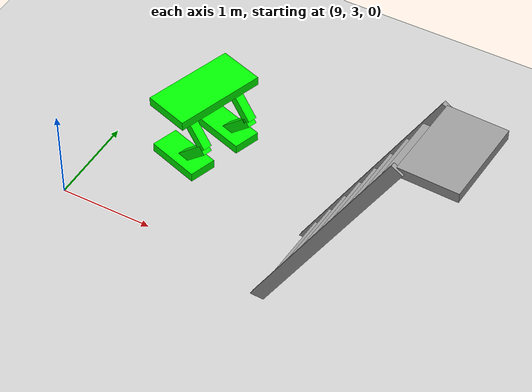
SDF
<sdf version="1.7">
 <world name="default">
  <model name="ground_plane">
   <static>1</static>
   <link name="link">
    <collision name="collision">
     <geometry><plane><normal>0 0 1</normal><size>100 100</size></plane></geometry>
     <surface>
      <contact><collide_bitmask>65535</collide_bitmask></contact>
      <friction><ode><mu>100</mu><mu2>50</mu2></ode></friction>
     </surface>
    </collision>
    <visual name="visual">
     <cast_shadows>0</cast_shadows>
     <geometry><plane><normal>0 0 1</normal><size>100 100</size></plane></geometry>
     <material>
      <script><uri>file://media/materials/scripts/gazebo.material</uri><name>Gazebo/Grey</name></script>
     </material>
    </visual>
   </link>
  </model>
  <model name="ladder_60deg_0rails">
   <static>1</static>
   <link name="step0">
    <pose>0 0.15396 0.266667 0 -0 0</pose>
    <inertial>
     <mass>9.75482</mass>
     <inertia>
      <ixx>0.00957124</ixx>
      <iyy>0.65963</iyy>
      <izz>0.666842</izz>
      <ixy>0</ixy>
      <ixz>0</ixz>
      <iyz>0</iyz>
     </inertia>
    </inertial>
    <collision name="collision"><geometry><box><size>0.9 0.1016 0.0381</size></box></geometry></collision>
    <visual name="visual">
     <geometry><box><size>0.9 0.1016 0.0381</size></box></geometry>
     <material>
      <script><uri>file://media/materials/scripts/gazebo.material</uri><name>Gazebo/Grey</name></script>
     </material>
    </visual>
   </link>
   <link name="step1">
    <pose>0 0.30792 0.533333 0 -0 0</pose>
    <inertial>
     <mass>9.75482</mass>
     <inertia>
      <ixx>0.00957124</ixx>
      <iyy>0.65963</iyy>
      <izz>0.666842</izz>
      <ixy>0</ixy>
      <ixz>0</ixz>
      <iyz>0</iyz>
     </inertia>
    </inertial>
    <collision name="collision"><geometry><box><size>0.9 0.1016 0.0381</size></box></geometry></collision>
    <visual name="visual">
     <geometry><box><size>0.9 0.1016 0.0381</size></box></geometry>
     <material>
      <script><uri>file://media/materials/scripts/gazebo.material</uri><name>Gazebo/Grey</name></script>
     </material>
    </visual>
   </link>
   <link name="step2">
    <pose>0 0.46188 0.8 0 -0 0</pose>
    <inertial>
     <mass>9.75482</mass>
     <inertia>
      <ixx>0.00957124</ixx>
      <iyy>0.65963</iyy>
      <izz>0.666842</izz>
      <ixy>0</ixy>
      <ixz>0</ixz>
      <iyz>0</iyz>
     </inertia>
    </inertial>
    <collision name="collision"><geometry><box><size>0.9 0.1016 0.0381</size></box></geometry></collision>
    <visual name="visual">
     <geometry><box><size>0.9 0.1016 0.0381</size></box></geometry>
     <material>
      <script><uri>file://media/materials/scripts/gazebo.material</uri><name>Gazebo/Grey</name></script>
     </material>
    </visual>
   </link>
   <link name="step3">
    <pose>0 0.61584 1.06667 0 -0 0</pose>
    <inertial>
     <mass>9.75482</mass>
     <inertia>
      <ixx>0.00957124</ixx>
      <iyy>0.65963</iyy>
      <izz>0.666842</izz>
      <ixy>0</ixy>
      <ixz>0</ixz>
      <iyz>0</iyz>
     </inertia>
    </inertial>
    <collision name="collision"><geometry><box><size>0.9 0.1016 0.0381</size></box></geometry></collision>
    <visual name="visual">
     <geometry><box><size>0.9 0.1016 0.0381</size></box></geometry>
     <material>
      <script><uri>file://media/materials/scripts/gazebo.material</uri><name>Gazebo/Grey</name></script>
     </material>
    </visual>
   </link>
   <link name="step4">
    <pose>0 0.7698 1.33333 0 -0 0</pose>
    <inertial>
     <mass>9.75482</mass>
     <inertia>
      <ixx>0.00957124</ixx>
      <iyy>0.65963</iyy>
      <izz>0.666842</izz>
      <ixy>0</ixy>
      <ixz>0</ixz>
      <iyz>0</iyz>
     </inertia>
    </inertial>
    <collision name="collision"><geometry><box><size>0.9 0.1016 0.0381</size></box></geometry></collision>
    <visual name="visual">
     <geometry><box><size>0.9 0.1016 0.0381</size></box></geometry>
     <material>
      <script><uri>file://media/materials/scripts/gazebo.material</uri><name>Gazebo/Grey</name></script>
     </material>
    </visual>
   </link>
   <link name="step5">
    <pose>0 0.92376 1.6 0 -0 0</pose>
    <inertial>
     <mass>9.75482</mass>
     <inertia>
      <ixx>0.00957124</ixx>
      <iyy>0.65963</iyy>
      <izz>0.666842</izz>
      <ixy>0</ixy>
      <ixz>0</ixz>
      <iyz>0</iyz>
     </inertia>
    </inertial>
    <collision name="collision"><geometry><box><size>0.9 0.1016 0.0381</size></box></geometry></collision>
    <visual name="visual">
     <geometry><box><size>0.9 0.1016 0.0381</size></box></geometry>
     <material>
      <script><uri>file://media/materials/scripts/gazebo.material</uri><name>Gazebo/Grey</name></script>
     </material>
    </visual>
   </link>
   <link name="step6">
    <pose>0 1.07772 1.86667 0 -0 0</pose>
    <inertial>
     <mass>9.75482</mass>
     <inertia>
      <ixx>0.00957124</ixx>
      <iyy>0.65963</iyy>
      <izz>0.666842</izz>
      <ixy>0</ixy>
      <ixz>0</ixz>
      <iyz>0</iyz>
     </inertia>
    </inertial>
    <collision name="collision"><geometry><box><size>0.9 0.1016 0.0381</size></box></geometry></collision>
    <visual name="visual">
     <geometry><box><size>0.9 0.1016 0.0381</size></box></geometry>
     <material>
      <script><uri>file://media/materials/scripts/gazebo.material</uri><name>Gazebo/Grey</name></script>
     </material>
    </visual>
   </link>
   <link name="step7">
    <pose>0 1.23168 2.13333 0 -0 0</pose>
    <inertial>
     <mass>9.75482</mass>
     <inertia>
      <ixx>0.00957124</ixx>
      <iyy>0.65963</iyy>
      <izz>0.666842</izz>
      <ixy>0</ixy>
      <ixz>0</ixz>
      <iyz>0</iyz>
     </inertia>
    </inertial>
    <collision name="collision"><geometry><box><size>0.9 0.1016 0.0381</size></box></geometry></collision>
    <visual name="visual">
     <geometry><box><size>0.9 0.1016 0.0381</size></box></geometry>
     <material>
      <script><uri>file://media/materials/scripts/gazebo.material</uri><name>Gazebo/Grey</name></script>
     </material>
    </visual>
   </link>
   <link name="landing">
    <pose>0 1.68564 2.4 0 -0 0</pose>
    <inertial>
     <mass>57.6072</mass>
     <inertia><ixx>1.73518</ixx><iyy>3.89545</iyy><izz>5.6167</izz><ixy>0</ixy><ixz>0</ixz><iyz>0</iyz></inertia>
    </inertial>
    <collision name="collision"><geometry><box><size>0.9 0.6 0.1016</size></box></geometry></collision>
    <visual name="visual">
     <geometry><box><size>0.9 0.6 0.1016</size></box></geometry>
     <material>
      <script><uri>file://media/materials/scripts/gazebo.material</uri><name>Gazebo/Grey</name></script>
     </material>
    </visual>
   </link>
   <link name="left_side_wall">
    <pose>-0.45 0.69282 1.2 1.0472 -0 0</pose>
    <collision name="collision"><geometry><box><size>0.0508 2.85128 0.13</size></box></geometry></collision>
    <visual name="visual">
     <geometry><box><size>0.0508 2.85128 0.13</size></box></geometry>
     <material>
      <script><uri>file://media/materials/scripts/gazebo.material</uri><name>Gazebo/Grey</name></script>
     </material>
    </visual>
   </link>
   <link name="right_side_wall">
    <pose>0.45 0.69282 1.2 1.0472 -0 0</pose>
    <collision name="collision"><geometry><box><size>0.0508 2.85128 0.13</size></box></geometry></collision>
    <visual name="visual">
     <geometry><box><size>0.0508 2.85128 0.13</size></box></geometry>
     <material>
      <script><uri>file://media/materials/scripts/gazebo.material</uri><name>Gazebo/Grey</name></script>
     </material>
    </visual>
   </link>
   <pose>11.4131 3.21267 0 0 0 -1.61132</pose>
  </model>
  <model name="HumanoidRobot_2">
   <model name="HumanoidRobot">
    <link name="link_0">
     <pose>-0.012657 0.075 0.964637 0 -0 0</pose>
     <inertial>
      <mass>1</mass>
      <inertia>
       <ixx>0.166667</ixx>
       <ixy>0</ixy>
       <ixz>0</ixz>
       <iyy>0.166667</iyy>
       <iyz>0</iyz>
       <izz>0.166667</izz>
      </inertia>
     </inertial>
     <visual name="visual">
      <geometry><box><size>0.5 1 0.1</size></box></geometry>
      <material>
       <lighting>1</lighting>
       <script><uri>file://media/materials/scripts/gazebo.material</uri><name>Gazebo/Grey</name></script>
       <shader type="pixel"><normal_map>__default__</normal_map></shader>
       <ambient>0 1 0 1</ambient>
       <diffuse>0.1 0.1 0.1 1</diffuse>
       <specular>0 0 0 1</specular>
       <emissive>0 0 0 1</emissive>
      </material>
     </visual>
     <collision name="collision">
      <geometry><box><size>0.5 1 0.1</size></box></geometry>
      <surface>
       <friction>
        <ode><mu>1</mu><mu2>1</mu2><fdir1>0 0 0</fdir1><slip1>0</slip1><slip2>0</slip2></ode>
        <torsional>
         <coefficient>1</coefficient>
         <patch_radius>0</patch_radius>
         <surface_radius>0</surface_radius>
         <use_patch_radius>1</use_patch_radius>
         <ode><slip>0</slip></ode>
        </torsional>
       </friction>
       <bounce><restitution_coefficient>0</restitution_coefficient><threshold>1e+06</threshold></bounce>
       <contact>
        <collide_without_contact>0</collide_without_contact>
        <collide_without_contact_bitmask>1</collide_without_contact_bitmask>
        <collide_bitmask>1</collide_bitmask>
        <ode>
         <soft_cfm>0</soft_cfm>
         <soft_erp>0.2</soft_erp>
         <kp>1e+13</kp>
         <kd>1</kd>
         <max_vel>0.01</max_vel>
         <min_depth>0</min_depth>
        </ode>
        <bullet>
         <split_impulse>1</split_impulse>
         <split_impulse_penetration_threshold>-0.01</split_impulse_penetration_threshold>
         <soft_cfm>0</soft_cfm>
         <soft_erp>0.2</soft_erp>
         <kp>1e+13</kp>
         <kd>1</kd>
        </bullet>
       </contact>
      </surface>
     </collision>
    </link>
    <link name="link_2">
     <pose>-0.012657 0.375 0.964637 0 -0.785 0</pose>
     <inertial>
      <mass>1</mass>
      <inertia>
       <ixx>0.166667</ixx>
       <ixy>0</ixy>
       <ixz>0</ixz>
       <iyy>0.166667</iyy>
       <iyz>0</iyz>
       <izz>0.166667</izz>
      </inertia>
     </inertial>
     <visual name="visual">
      <pose>0 0 -0.25 0 -0 0</pose>
      <geometry><box><size>0.1 0.1 0.5</size></box></geometry>
      <material>
       <lighting>1</lighting>
       <script><uri>file://media/materials/scripts/gazebo.material</uri><name>Gazebo/Grey</name></script>
       <shader type="pixel"><normal_map>__default__</normal_map></shader>
       <ambient>0 1 0 1</ambient>
       <diffuse>0.1 0.1 0.1 1</diffuse>
       <specular>0 0 0 1</specular>
       <emissive>0 0 0 1</emissive>
      </material>
     </visual>
     <collision name="collision">
      <pose>0 0 -0.25 0 -0 0</pose>
      <geometry><box><size>0.1 0.1 0.5</size></box></geometry>
      <surface>
       <friction>
        <ode><mu>1</mu><mu2>1</mu2><fdir1>0 0 0</fdir1><slip1>0</slip1><slip2>0</slip2></ode>
        <torsional>
         <coefficient>1</coefficient>
         <patch_radius>0</patch_radius>
         <surface_radius>0</surface_radius>
         <use_patch_radius>1</use_patch_radius>
         <ode><slip>0</slip></ode>
        </torsional>
       </friction>
       <bounce><restitution_coefficient>0</restitution_coefficient><threshold>1e+06</threshold></bounce>
       <contact>
        <collide_without_contact>0</collide_without_contact>
        <collide_without_contact_bitmask>1</collide_without_contact_bitmask>
        <collide_bitmask>1</collide_bitmask>
        <ode>
         <soft_cfm>0</soft_cfm>
         <soft_erp>0.2</soft_erp>
         <kp>1e+13</kp>
         <kd>1</kd>
         <max_vel>0.01</max_vel>
         <min_depth>0</min_depth>
        </ode>
        <bullet>
         <split_impulse>1</split_impulse>
         <split_impulse_penetration_threshold>-0.01</split_impulse_penetration_threshold>
         <soft_cfm>0</soft_cfm>
         <soft_erp>0.2</soft_erp>
         <kp>1e+13</kp>
         <kd>1</kd>
        </bullet>
       </contact>
      </surface>
     </collision>
    </link>
    <link name="link_2_clone">
     <pose>0.340755 0.375 0.610943 0 0.7857 0</pose>
     <inertial>
      <mass>1</mass>
      <inertia>
       <ixx>0.166667</ixx>
       <ixy>0</ixy>
       <ixz>0</ixz>
       <iyy>0.166667</iyy>
       <iyz>0</iyz>
       <izz>0.166667</izz>
      </inertia>
     </inertial>
     <visual name="visual">
      <pose>0 0 -0.25 0 -0 0</pose>
      <geometry><box><size>0.1 0.1 0.5</size></box></geometry>
      <material>
       <lighting>1</lighting>
       <script><uri>file://media/materials/scripts/gazebo.material</uri><name>Gazebo/Grey</name></script>
       <shader type="pixel"><normal_map>__default__</normal_map></shader>
       <ambient>0 1 0 1</ambient>
       <diffuse>0.1 0.1 0.1 1</diffuse>
       <specular>0 0 0 1</specular>
       <emissive>0 0 0 1</emissive>
      </material>
     </visual>
     <collision name="collision">
      <pose>0 0 -0.25 0 -0 0</pose>
      <geometry><box><size>0.1 0.1 0.5</size></box></geometry>
      <surface>
       <friction>
        <ode><mu>1</mu><mu2>1</mu2><fdir1>0 0 0</fdir1><slip1>0</slip1><slip2>0</slip2></ode>
        <torsional>
         <coefficient>1</coefficient>
         <patch_radius>0</patch_radius>
         <surface_radius>0</surface_radius>
         <use_patch_radius>1</use_patch_radius>
         <ode><slip>0</slip></ode>
        </torsional>
       </friction>
       <bounce><restitution_coefficient>0</restitution_coefficient><threshold>1e+06</threshold></bounce>
       <contact>
        <collide_without_contact>0</collide_without_contact>
        <collide_without_contact_bitmask>1</collide_without_contact_bitmask>
        <collide_bitmask>1</collide_bitmask>
        <ode>
         <soft_cfm>0</soft_cfm>
         <soft_erp>0.2</soft_erp>
         <kp>1e+13</kp>
         <kd>1</kd>
         <max_vel>0.01</max_vel>
         <min_depth>0</min_depth>
        </ode>
        <bullet>
         <split_impulse>1</split_impulse>
         <split_impulse_penetration_threshold>-0.01</split_impulse_penetration_threshold>
         <soft_cfm>0</soft_cfm>
         <soft_erp>0.2</soft_erp>
         <kp>1e+13</kp>
         <kd>1</kd>
        </bullet>
       </contact>
      </surface>
     </collision>
    </link>
    <link name="link_2_clone_clone">
     <pose>-0.012657 -0.225 0.964637 0 -0.7857 0</pose>
     <inertial>
      <mass>1</mass>
      <inertia>
       <ixx>0.166667</ixx>
       <ixy>0</ixy>
       <ixz>0</ixz>
       <iyy>0.166667</iyy>
       <iyz>0</iyz>
       <izz>0.166667</izz>
      </inertia>
     </inertial>
     <visual name="visual">
      <pose>0 0 -0.25 0 -0 0</pose>
      <geometry><box><size>0.1 0.1 0.5</size></box></geometry>
      <material>
       <lighting>1</lighting>
       <script><uri>file://media/materials/scripts/gazebo.material</uri><name>Gazebo/Grey</name></script>
       <shader type="pixel"><normal_map>__default__</normal_map></shader>
       <ambient>0 1 0 1</ambient>
       <diffuse>0.1 0.1 0.1 1</diffuse>
       <specular>0 0 0 1</specular>
       <emissive>0 0 0 1</emissive>
      </material>
     </visual>
     <collision name="collision">
      <pose>0 0 -0.25 0 -0 0</pose>
      <geometry><box><size>0.1 0.1 0.5</size></box></geometry>
      <surface>
       <friction>
        <ode><mu>1</mu><mu2>1</mu2><fdir1>0 0 0</fdir1><slip1>0</slip1><slip2>0</slip2></ode>
        <torsional>
         <coefficient>1</coefficient>
         <patch_radius>0</patch_radius>
         <surface_radius>0</surface_radius>
         <use_patch_radius>1</use_patch_radius>
         <ode><slip>0</slip></ode>
        </torsional>
       </friction>
       <bounce><restitution_coefficient>0</restitution_coefficient><threshold>1e+06</threshold></bounce>
       <contact>
        <collide_without_contact>0</collide_without_contact>
        <collide_without_contact_bitmask>1</collide_without_contact_bitmask>
        <collide_bitmask>1</collide_bitmask>
        <ode>
         <soft_cfm>0</soft_cfm>
         <soft_erp>0.2</soft_erp>
         <kp>1e+13</kp>
         <kd>1</kd>
         <max_vel>0.01</max_vel>
         <min_depth>0</min_depth>
        </ode>
        <bullet>
         <split_impulse>1</split_impulse>
         <split_impulse_penetration_threshold>-0.01</split_impulse_penetration_threshold>
         <soft_cfm>0</soft_cfm>
         <soft_erp>0.2</soft_erp>
         <kp>1e+13</kp>
         <kd>1</kd>
        </bullet>
       </contact>
      </surface>
     </collision>
    </link>
    <link name="link_2_clone_clone_clone">
     <pose>0.341003 -0.225 0.611191 0 0.785 0</pose>
     <inertial>
      <mass>1</mass>
      <inertia>
       <ixx>0.166667</ixx>
       <ixy>0</ixy>
       <ixz>0</ixz>
       <iyy>0.166667</iyy>
       <iyz>0</iyz>
       <izz>0.166667</izz>
      </inertia>
     </inertial>
     <visual name="visual">
      <pose>0 0 -0.25 0 -0 0</pose>
      <geometry><box><size>0.1 0.1 0.5</size></box></geometry>
      <material>
       <lighting>1</lighting>
       <script><uri>file://media/materials/scripts/gazebo.material</uri><name>Gazebo/Grey</name></script>
       <shader type="pixel"><normal_map>__default__</normal_map></shader>
       <ambient>0 1 0 1</ambient>
       <diffuse>0.1 0.1 0.1 1</diffuse>
       <specular>0 0 0 1</specular>
       <emissive>0 0 0 1</emissive>
      </material>
     </visual>
     <collision name="collision">
      <pose>0 0 -0.25 0 -0 0</pose>
      <geometry><box><size>0.1 0.1 0.5</size></box></geometry>
      <surface>
       <friction>
        <ode><mu>1</mu><mu2>1</mu2><fdir1>0 0 0</fdir1><slip1>0</slip1><slip2>0</slip2></ode>
        <torsional>
         <coefficient>1</coefficient>
         <patch_radius>0</patch_radius>
         <surface_radius>0</surface_radius>
         <use_patch_radius>1</use_patch_radius>
         <ode><slip>0</slip></ode>
        </torsional>
       </friction>
       <bounce><restitution_coefficient>0</restitution_coefficient><threshold>1e+06</threshold></bounce>
       <contact>
        <collide_without_contact>0</collide_without_contact>
        <collide_without_contact_bitmask>1</collide_without_contact_bitmask>
        <collide_bitmask>1</collide_bitmask>
        <ode>
         <soft_cfm>0</soft_cfm>
         <soft_erp>0.2</soft_erp>
         <kp>1e+13</kp>
         <kd>1</kd>
         <max_vel>0.01</max_vel>
         <min_depth>0</min_depth>
        </ode>
        <bullet>
         <split_impulse>1</split_impulse>
         <split_impulse_penetration_threshold>-0.01</split_impulse_penetration_threshold>
         <soft_cfm>0</soft_cfm>
         <soft_erp>0.2</soft_erp>
         <kp>1e+13</kp>
         <kd>1</kd>
        </bullet>
       </contact>
      </surface>
     </collision>
    </link>
    <link name="link_3">
     <pose>-0.01241 -0.225 0.257496 0 -0 0</pose>
     <inertial>
      <mass>1</mass>
      <inertia>
       <ixx>0.166667</ixx>
       <ixy>0</ixy>
       <ixz>0</ixz>
       <iyy>0.166667</iyy>
       <iyz>0</iyz>
       <izz>0.166667</izz>
      </inertia>
     </inertial>
     <visual name="visual">
      <geometry><box><size>0.6 0.3 0.1</size></box></geometry>
      <material>
       <lighting>1</lighting>
       <script><uri>file://media/materials/scripts/gazebo.material</uri><name>Gazebo/Grey</name></script>
       <shader type="pixel"><normal_map>__default__</normal_map></shader>
       <ambient>0 1 0 1</ambient>
       <diffuse>0.1 0.1 0.1 1</diffuse>
       <specular>0 0 0 1</specular>
       <emissive>0 0 0 1</emissive>
      </material>
     </visual>
     <collision name="collision">
      <geometry><box><size>0.6 0.3 0.1</size></box></geometry>
      <surface>
       <friction>
        <ode><mu>1</mu><mu2>1</mu2><fdir1>0 0 0</fdir1><slip1>0</slip1><slip2>0</slip2></ode>
        <torsional>
         <coefficient>1</coefficient>
         <patch_radius>0</patch_radius>
         <surface_radius>0</surface_radius>
         <use_patch_radius>1</use_patch_radius>
         <ode><slip>0</slip></ode>
        </torsional>
       </friction>
       <bounce><restitution_coefficient>0</restitution_coefficient><threshold>1e+06</threshold></bounce>
       <contact>
        <collide_without_contact>0</collide_without_contact>
        <collide_without_contact_bitmask>1</collide_without_contact_bitmask>
        <collide_bitmask>1</collide_bitmask>
        <ode>
         <soft_cfm>0</soft_cfm>
         <soft_erp>0.2</soft_erp>
         <kp>1e+13</kp>
         <kd>1</kd>
         <max_vel>0.01</max_vel>
         <min_depth>0</min_depth>
        </ode>
        <bullet>
         <split_impulse>1</split_impulse>
         <split_impulse_penetration_threshold>-0.01</split_impulse_penetration_threshold>
         <soft_cfm>0</soft_cfm>
         <soft_erp>0.2</soft_erp>
         <kp>1e+13</kp>
         <kd>1</kd>
        </bullet>
       </contact>
      </surface>
     </collision>
    </link>
    <link name="link_3_clone">
     <pose>-0.012905 0.375 0.257496 0 -0 0</pose>
     <inertial>
      <mass>1</mass>
      <inertia>
       <ixx>0.166667</ixx>
       <ixy>0</ixy>
       <ixz>0</ixz>
       <iyy>0.166667</iyy>
       <iyz>0</iyz>
       <izz>0.166667</izz>
      </inertia>
     </inertial>
     <visual name="visual">
      <geometry><box><size>0.6 0.3 0.1</size></box></geometry>
      <material>
       <lighting>1</lighting>
       <script><uri>file://media/materials/scripts/gazebo.material</uri><name>Gazebo/Grey</name></script>
       <shader type="pixel"><normal_map>__default__</normal_map></shader>
       <ambient>0 1 0 1</ambient>
       <diffuse>0.1 0.1 0.1 1</diffuse>
       <specular>0 0 0 1</specular>
       <emissive>0 0 0 1</emissive>
      </material>
     </visual>
     <collision name="collision">
      <geometry><box><size>0.6 0.3 0.1</size></box></geometry>
      <surface>
       <friction>
        <ode><mu>1</mu><mu2>1</mu2><fdir1>0 0 0</fdir1><slip1>0</slip1><slip2>0</slip2></ode>
        <torsional>
         <coefficient>1</coefficient>
         <patch_radius>0</patch_radius>
         <surface_radius>0</surface_radius>
         <use_patch_radius>1</use_patch_radius>
         <ode><slip>0</slip></ode>
        </torsional>
       </friction>
       <bounce><restitution_coefficient>0</restitution_coefficient><threshold>1e+06</threshold></bounce>
       <contact>
        <collide_without_contact>0</collide_without_contact>
        <collide_without_contact_bitmask>1</collide_without_contact_bitmask>
        <collide_bitmask>1</collide_bitmask>
        <ode>
         <soft_cfm>0</soft_cfm>
         <soft_erp>0.2</soft_erp>
         <kp>1e+13</kp>
         <kd>1</kd>
         <max_vel>0.01</max_vel>
         <min_depth>0</min_depth>
        </ode>
        <bullet>
         <split_impulse>1</split_impulse>
         <split_impulse_penetration_threshold>-0.01</split_impulse_penetration_threshold>
         <soft_cfm>0</soft_cfm>
         <soft_erp>0.2</soft_erp>
         <kp>1e+13</kp>
         <kd>1</kd>
        </bullet>
       </contact>
      </surface>
     </collision>
    </link>
    <joint name="link_0_JOINT_0" type="fixed">
     <parent>link_0</parent>
     <child>link_2</child>
     <axis>
      <xyz>0 1 0</xyz>
      <limit>
       <lower>-1.79769e+308</lower>
       <upper>1.79769e+308</upper>
       <effort>-1</effort>
       <velocity>-1</velocity>
      </limit>
      <dynamics>
       <spring_reference>0</spring_reference>
       <spring_stiffness>0</spring_stiffness>
       <damping>0</damping>
      </dynamics>
     </axis>
     <physics>
      <ode><limit><cfm>0</cfm><erp>0.2</erp></limit><suspension><cfm>0</cfm><erp>0.2</erp></suspension></ode>
     </physics>
    </joint>
    <joint name="link_0_JOINT_2" type="fixed">
     <parent>link_0</parent>
     <child>link_2_clone_clone</child>
     <axis>
      <xyz>0 1 0</xyz>
      <limit>
       <lower>-1.79769e+308</lower>
       <upper>1.79769e+308</upper>
       <effort>-1</effort>
       <velocity>-1</velocity>
      </limit>
      <dynamics>
       <spring_reference>0</spring_reference>
       <spring_stiffness>0</spring_stiffness>
       <damping>0</damping>
       <friction>0</friction>
      </dynamics>
     </axis>
     <physics>
      <ode><limit><cfm>0</cfm><erp>0.2</erp></limit><suspension><cfm>0</cfm><erp>0.2</erp></suspension></ode>
     </physics>
    </joint>
    <joint name="link_2_JOINT_1" type="fixed">
     <parent>link_2</parent>
     <child>link_2_clone</child>
     <axis>
      <xyz>0 1 0</xyz>
      <limit>
       <lower>-1.79769e+308</lower>
       <upper>1.79769e+308</upper>
       <effort>-1</effort>
       <velocity>-1</velocity>
      </limit>
      <dynamics>
       <spring_reference>0</spring_reference>
       <spring_stiffness>0</spring_stiffness>
       <damping>0</damping>
       <friction>0</friction>
      </dynamics>
     </axis>
     <physics>
      <ode><limit><cfm>0</cfm><erp>0.2</erp></limit><suspension><cfm>0</cfm><erp>0.2</erp></suspension></ode>
     </physics>
    </joint>
    <joint name="link_2_clone_JOINT_5" type="fixed">
     <parent>link_2_clone</parent>
     <child>link_3_clone</child>
     <axis>
      <xyz>0 1 0</xyz>
      <limit>
       <lower>-1.79769e+308</lower>
       <upper>1.79769e+308</upper>
       <effort>-1</effort>
       <velocity>-1</velocity>
      </limit>
      <dynamics>
       <spring_reference>0</spring_reference>
       <spring_stiffness>0</spring_stiffness>
       <damping>0</damping>
       <friction>0</friction>
      </dynamics>
     </axis>
     <physics>
      <ode><limit><cfm>0</cfm><erp>0.2</erp></limit><suspension><cfm>0</cfm><erp>0.2</erp></suspension></ode>
     </physics>
    </joint>
    <joint name="link_2_clone_clone_JOINT_3" type="fixed">
     <parent>link_2_clone_clone</parent>
     <child>link_2_clone_clone_clone</child>
     <axis>
      <xyz>0 1 0</xyz>
      <limit>
       <lower>-1.79769e+308</lower>
       <upper>1.79769e+308</upper>
       <effort>-1</effort>
       <velocity>-1</velocity>
      </limit>
      <dynamics>
       <spring_reference>0</spring_reference>
       <spring_stiffness>0</spring_stiffness>
       <damping>0</damping>
      </dynamics>
     </axis>
     <physics>
      <ode><limit><cfm>0</cfm><erp>0.2</erp></limit><suspension><cfm>0</cfm><erp>0.2</erp></suspension></ode>
     </physics>
    </joint>
    <joint name="link_2_clone_clone_clone_JOINT_4" type="fixed">
     <parent>link_2_clone_clone_clone</parent>
     <child>link_3</child>
     <axis>
      <xyz>0 1 0</xyz>
      <limit>
       <lower>-1.79769e+308</lower>
       <upper>1.79769e+308</upper>
       <effort>-1</effort>
       <velocity>-1</velocity>
      </limit>
      <dynamics>
       <spring_reference>0</spring_reference>
       <spring_stiffness>0</spring_stiffness>
       <damping>0</damping>
      </dynamics>
     </axis>
     <physics>
      <ode><limit><cfm>0</cfm><erp>0.2</erp></limit><suspension><cfm>0</cfm><erp>0.2</erp></suspension></ode>
     </physics>
    </joint>
    <static>0</static>
   </model>
   <static>1</static>
   <pose>9.89251 4.19227 -0.207496 -1e-06 -0 -0.31555</pose>
  </model>
 </world>
</sdf>
